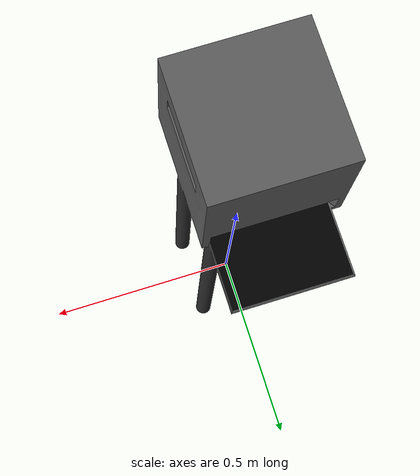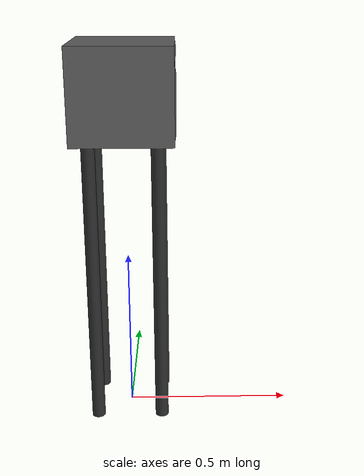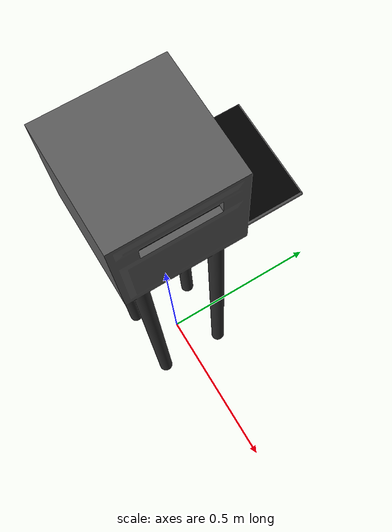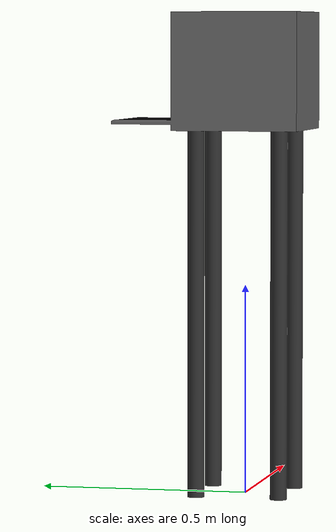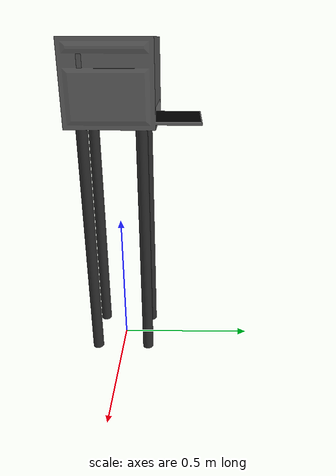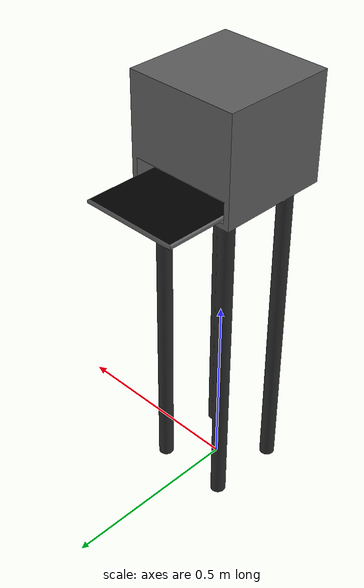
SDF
<?xml version="1.0" ?>
<sdf version="1.5">
  <model name="portioning_machine">
    <link name="link">
      <collision name="collision">
        <geometry>
          <mesh>
            <uri>model://portioning_machine/meshes/portioning_machine.dae</uri>
            <scale>1.0 1.0 1.0</scale>
          </mesh>
        </geometry>
      </collision>
      <visual name="visual">
        <geometry>
          <mesh>
            <uri>model://portioning_machine/meshes/portioning_machine.dae</uri>
            <scale>1.0 1.0 1.0</scale>
          </mesh>
        </geometry>
      </visual>
    </link>
  </model>
</sdf>
